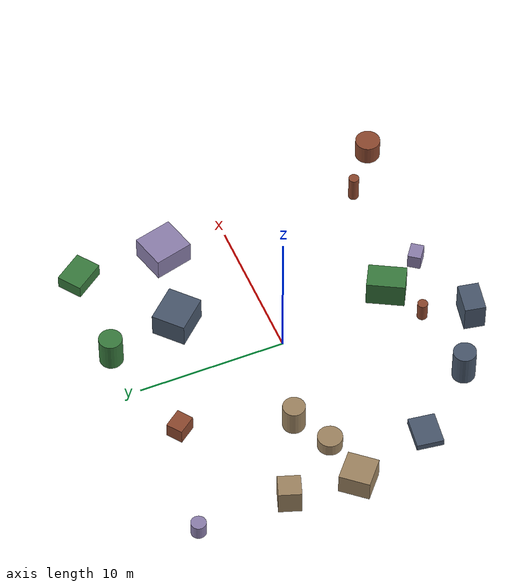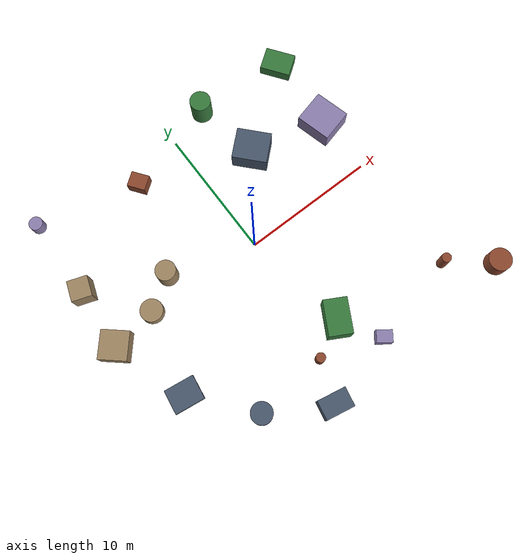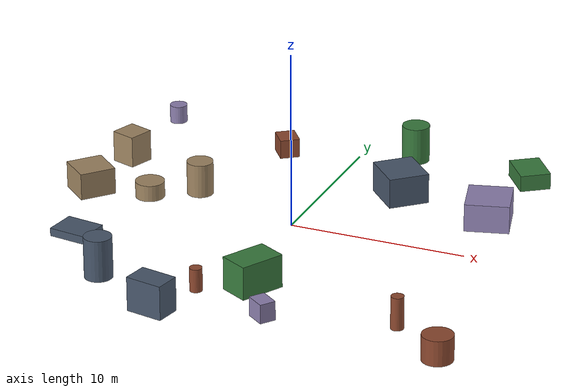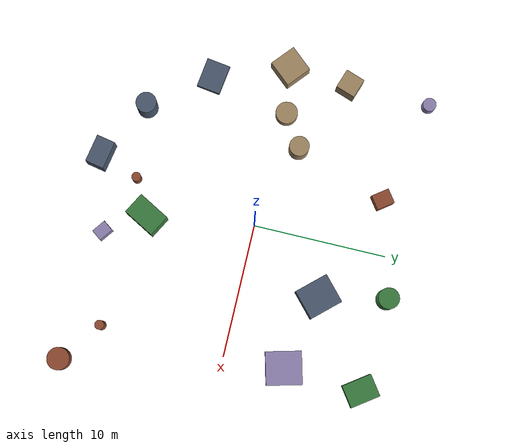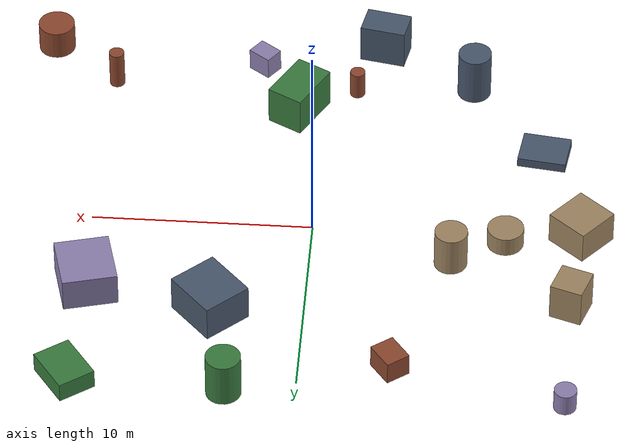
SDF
<sdf version="1.10">
 <world name="robotx_task1_uav_view">
  <gravity>0 0 -9.81</gravity>
  <physics name="physics" type="ode">
   <max_step_size>0.002</max_step_size>
   <real_time_factor>1.0</real_time_factor>
  </physics>
  <scene>
   <ambient>0.27 0.27 0.27 1.0</ambient>
   <background>0.62 0.75 0.92 1.0</background>
   <shadows>true</shadows>
   <grid>false</grid>
  </scene>
  <light name="sun" type="directional">
   <pose>0 0 300 0 0 0</pose>
   <diffuse>1.00 0.98 0.94 1.0</diffuse>
   <specular>1.00 1.00 1.00 1.0</specular>
   <direction>0.26 -0.12 -1.0</direction>
   <attenuation>
    <range>2500</range>
    <constant>0.85</constant>
    <linear>0.001</linear>
    <quadratic>0.00005</quadratic>
   </attenuation>
  </light>
  <plugin filename="gz-sim-physics-system" name="gz::sim::systems::Physics"/>
  <plugin filename="gz-sim-user-commands-system" name="gz::sim::systems::UserCommands"/>
  <plugin filename="gz-sim-scene-broadcaster-system" name="gz::sim::systems::SceneBroadcaster"/>
  <plugin filename="gz-sim-sensors-system" name="gz::sim::systems::Sensors">
   <render_engine>ogre2</render_engine>
  </plugin>
  <model name="scene_clutter_box_000">
   <static>true</static>
   <pose>-11.814 4.525 0.924 0 0 1.238983</pose>
   <link name="link">
    <visual name="v">
     <geometry><box><size>1.500 1.477 1.809</size></box></geometry>
     <material><ambient>0.45 0.38 0.32 1.0</ambient><diffuse>0.62 0.52 0.38 1.0</diffuse></material>
    </visual>
   </link>
  </model>
  <model name="scene_clutter_cyl_001">
   <static>true</static>
   <pose>-6.849 -9.824 1.225 0 0 0.482771</pose>
   <link name="link">
    <visual name="v">
     <geometry><cylinder><radius>0.769</radius><length>2.349</length></cylinder></geometry>
     <material><ambient>0.18 0.22 0.28 1.0</ambient><diffuse>0.28 0.34 0.42 1.0</diffuse></material>
    </visual>
   </link>
  </model>
  <model name="scene_clutter_cyl_002">
   <static>true</static>
   <pose>-1.432 -9.332 0.711 0 0 1.874429</pose>
   <link name="link">
    <visual name="v">
     <geometry><cylinder><radius>0.345</radius><length>1.323</length></cylinder></geometry>
     <material><ambient>0.35 0.16 0.12 1.0</ambient><diffuse>0.55 0.28 0.18 1.0</diffuse></material>
    </visual>
   </link>
  </model>
  <model name="scene_clutter_box_003">
   <static>true</static>
   <pose>1.174 -7.901 0.960 0 0 -2.072436</pose>
   <link name="link">
    <visual name="v">
     <geometry><box><size>2.566 1.732 1.879</size></box></geometry>
     <material><ambient>0.12 0.30 0.14 1.0</ambient><diffuse>0.22 0.48 0.24 1.0</diffuse></material>
    </visual>
   </link>
  </model>
  <model name="scene_clutter_box_004">
   <static>true</static>
   <pose>3.005 -10.855 0.559 0 0 -0.636181</pose>
   <link name="link">
    <visual name="v">
     <geometry><box><size>1.145 0.893 1.077</size></box></geometry>
     <material><ambient>0.40 0.35 0.50 1.0</ambient><diffuse>0.55 0.50 0.68 1.0</diffuse></material>
    </visual>
   </link>
  </model>
  <model name="scene_clutter_cyl_005">
   <static>true</static>
   <pose>-6.345 1.905 1.011 0 0 -2.868675</pose>
   <link name="link">
    <visual name="v">
     <geometry><cylinder><radius>0.746</radius><length>1.923</length></cylinder></geometry>
     <material><ambient>0.45 0.38 0.32 1.0</ambient><diffuse>0.62 0.52 0.38 1.0</diffuse></material>
    </visual>
   </link>
  </model>
  <model name="scene_clutter_box_006">
   <static>true</static>
   <pose>4.125 5.796 0.880 0 0 2.311966</pose>
   <link name="link">
    <visual name="v">
     <geometry><box><size>2.599 2.313 1.720</size></box></geometry>
     <material><ambient>0.18 0.22 0.28 1.0</ambient><diffuse>0.28 0.34 0.42 1.0</diffuse></material>
    </visual>
   </link>
  </model>
  <model name="scene_clutter_cyl_007">
   <static>true</static>
   <pose>9.817 -9.316 0.967 0 0 0.134888</pose>
   <link name="link">
    <visual name="v">
     <geometry><cylinder><radius>0.349</radius><length>1.835</length></cylinder></geometry>
     <material><ambient>0.35 0.16 0.12 1.0</ambient><diffuse>0.55 0.28 0.18 1.0</diffuse></material>
    </visual>
   </link>
  </model>
  <model name="scene_clutter_box_008">
   <static>true</static>
   <pose>10.112 10.405 0.484 0 0 2.193927</pose>
   <link name="link">
    <visual name="v">
     <geometry><box><size>2.302 1.742 0.928</size></box></geometry>
     <material><ambient>0.12 0.30 0.14 1.0</ambient><diffuse>0.22 0.48 0.24 1.0</diffuse></material>
    </visual>
   </link>
  </model>
  <model name="scene_clutter_box_009">
   <static>true</static>
   <pose>9.785 4.500 0.811 0 0 -1.315796</pose>
   <link name="link">
    <visual name="v">
     <geometry><box><size>2.668 2.474 1.582</size></box></geometry>
     <material><ambient>0.40 0.35 0.50 1.0</ambient><diffuse>0.55 0.50 0.68 1.0</diffuse></material>
    </visual>
   </link>
  </model>
  <model name="scene_clutter_cyl_010">
   <static>true</static>
   <pose>-8.738 0.421 0.517 0 0 0.313740</pose>
   <link name="link">
    <visual name="v">
     <geometry><cylinder><radius>0.825</radius><length>0.935</length></cylinder></geometry>
     <material><ambient>0.45 0.38 0.32 1.0</ambient><diffuse>0.62 0.52 0.38 1.0</diffuse></material>
    </visual>
   </link>
  </model>
  <model name="scene_clutter_box_011">
   <static>true</static>
   <pose>-10.285 -5.583 0.247 0 0 -0.139443</pose>
   <link name="link">
    <visual name="v">
     <geometry><box><size>2.217 1.791 0.455</size></box></geometry>
     <material><ambient>0.18 0.22 0.28 1.0</ambient><diffuse>0.28 0.34 0.42 1.0</diffuse></material>
    </visual>
   </link>
  </model>
  <model name="scene_clutter_box_012">
   <static>true</static>
   <pose>-4.036 8.841 0.565 0 0 2.207209</pose>
   <link name="link">
    <visual name="v">
     <geometry><box><size>1.360 1.138 1.091</size></box></geometry>
     <material><ambient>0.35 0.16 0.12 1.0</ambient><diffuse>0.55 0.28 0.18 1.0</diffuse></material>
    </visual>
   </link>
  </model>
  <model name="scene_clutter_cyl_013">
   <static>true</static>
   <pose>3.102 10.792 1.121 0 0 2.282999</pose>
   <link name="link">
    <visual name="v">
     <geometry><cylinder><radius>0.787</radius><length>2.143</length></cylinder></geometry>
     <material><ambient>0.12 0.30 0.14 1.0</ambient><diffuse>0.22 0.48 0.24 1.0</diffuse></material>
    </visual>
   </link>
  </model>
  <model name="scene_clutter_cyl_014">
   <static>true</static>
   <pose>-11.762 10.656 0.571 0 0 -0.967069</pose>
   <link name="link">
    <visual name="v">
     <geometry><cylinder><radius>0.503</radius><length>1.042</length></cylinder></geometry>
     <material><ambient>0.40 0.35 0.50 1.0</ambient><diffuse>0.55 0.50 0.68 1.0</diffuse></material>
    </visual>
   </link>
  </model>
  <model name="scene_clutter_box_015">
   <static>true</static>
   <pose>-12.127 -0.092 0.788 0 0 -0.712177</pose>
   <link name="link">
    <visual name="v">
     <geometry><box><size>2.038 2.061 1.535</size></box></geometry>
     <material><ambient>0.45 0.38 0.32 1.0</ambient><diffuse>0.62 0.52 0.38 1.0</diffuse></material>
    </visual>
   </link>
  </model>
  <model name="scene_clutter_box_016">
   <static>true</static>
   <pose>-2.572 -12.309 0.981 0 0 -0.191294</pose>
   <link name="link">
    <visual name="v">
     <geometry><box><size>2.101 1.411 1.922</size></box></geometry>
     <material><ambient>0.18 0.22 0.28 1.0</ambient><diffuse>0.28 0.34 0.42 1.0</diffuse></material>
    </visual>
   </link>
  </model>
  <model name="scene_clutter_cyl_017">
   <static>true</static>
   <pose>12.903 -11.706 0.756 0 0 -1.966148</pose>
   <link name="link">
    <visual name="v">
     <geometry><cylinder><radius>0.842</radius><length>1.411</length></cylinder></geometry>
     <material><ambient>0.35 0.16 0.12 1.0</ambient><diffuse>0.55 0.28 0.18 1.0</diffuse></material>
    </visual>
   </link>
  </model>
  <model name="uav_dataset_camera">
   <static>false</static>
   <pose>0 0 26 0 0 0</pose>
   <plugin filename="librobotx_overhead_motion_plugin.dylib" name="robotx::OverheadMotionPlugin">
    <radius_x_m>8.29163</radius_x_m>
    <radius_y_m>10.27926</radius_y_m>
    <angular_speed_rad_s>0.062077</angular_speed_rad_s>
    <phase_rad>3.645226</phase_rad>
    <z_wobble_m>0.03857</z_wobble_m>
    <z_wobble_hz>0.03694</z_wobble_hz>
    <z_wobble_phase_rad>6.057709</z_wobble_phase_rad>
   </plugin>
   <link name="camera_link">
    <gravity>false</gravity>
    <sensor name="top_down_rgb" type="camera">
     <always_on>true</always_on>
     <update_rate>20</update_rate>
     <pose>0 0 0 0 1.57079632679 0</pose>
     <camera>
      <horizontal_fov>1.05</horizontal_fov>
      <image><width>1920</width><height>1080</height><format>R8G8B8</format></image>
      <clip><near>0.2</near><far>600</far></clip>
     </camera>
     <topic>/robotx/uav/camera/image_raw</topic>
     <visualize>true</visualize>
    </sensor>
   </link>
  </model>
 </world>
</sdf>
